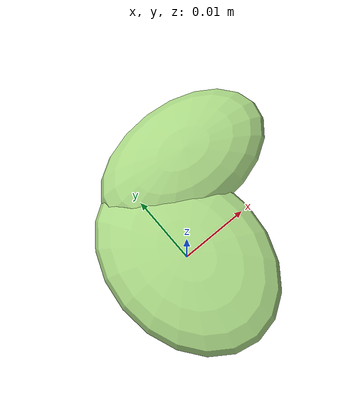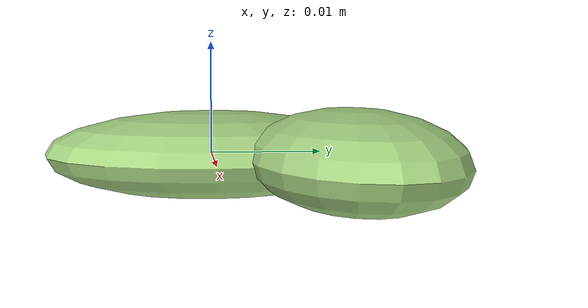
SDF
<?xml version="1.0" ?>
<!-- |    This document was autogenerated by xmacro from data/veggie_template/veggie_base.sdf.xacro  | -->
<!-- |    EDITING THIS FILE BY HAND IS NOT RECOMMENDED                                               | -->
<sdf version="1.8">
	<!-- Parameters -->
	<!-- Base -->
	<!-- Joint 0 -->
	<!-- Link 1 -->
	<!-- Joint 1 -->
	<!-- Link 2 -->
	<!-- Primitives -->
	<!-- All dimensions are half -->
	<!-- Object -->
	<model name="veggie">
		<!-- link0 -->
		<link name="link0">
			<inertial>
				<mass>0.0026757280740502803</mass>
				<inertia>
					<ixx>1.257607993292261e-07</ixx>
					<ixy>0</ixy>
					<ixz>0</ixz>
					<iyy>7.560929709822503e-08</iyy>
					<iyz>0</iyz>
					<izz>1.8572619403619456e-07</izz>
				</inertia>
			</inertial>
			<visual name="link0_visual">
				<pose>0 0 0 0 0 0</pose>
				<geometry>
					<ellipsoid>
						<radii>0.011254814193355571 0.014845418853516881 0.00382315200438812</radii>
					</ellipsoid>
				</geometry>
				<material>
					<ambient>0.659 0.839 0.514 1</ambient>
					<diffuse>0.659 0.839 0.514 1</diffuse>
					<specular>0 0 0 0</specular>
					<emissive>0 0 0 1</emissive>
				</material>
			</visual>
			<collision name="link0_collision">
				<pose>0 0 0 0 0 0 </pose>
				<geometry>
					<ellipsoid>
						<radii>0.011254814193355571 0.014845418853516881 0.00382315200438812</radii>
					</ellipsoid>
				</geometry>
			</collision>
		</link>
		<!-- link1 -->
		<joint name="joint0" type="fixed">
			<pose relative_to="link0">0.008749610731331575 0.011086186583369302 0.00039644967141909756 0.0 0.0 0.0</pose>
			<parent>link0</parent>
			<child>link1</child>
		</joint>
		<link name="link1">
			<pose relative_to="joint0">0 0 0 0 0 0</pose>
			<inertial>
				<mass>0.002006020273163442</mass>
				<inertia>
					<ixx>3.6410058733160305e-08</ixx>
					<ixy>0</ixy>
					<ixz>0</ixz>
					<iyy>8.050509554379409e-08</iyy>
					<iyz>0</iyz>
					<izz>1.0335470487969476e-07</izz>
				</inertia>
			</inertial>
			<visual name="link1_visual">
				<pose>0 0 0 0 0 0</pose>
				<geometry>
					<ellipsoid>
						<radii>0.013555775053919809 0.008593734906182825 0.004110923420275528</radii>
					</ellipsoid>
				</geometry>
				<material>
					<ambient>0.659 0.839 0.514 1</ambient>
					<diffuse>0.659 0.839 0.514 1</diffuse>
					<specular>0 0 0 0</specular>
					<emissive>0 0 0 1</emissive>
				</material>
			</visual>
			<collision name="link1_collision">
				<pose>0 0 0 0 0 0 </pose>
				<geometry>
					<ellipsoid>
						<radii>0.013555775053919809 0.008593734906182825 0.004110923420275528</radii>
					</ellipsoid>
				</geometry>
			</collision>
		</link>
		<!-- link2 -->
	</model>
</sdf>
